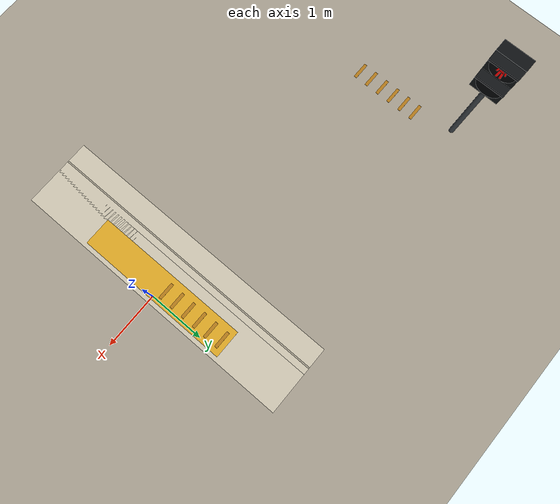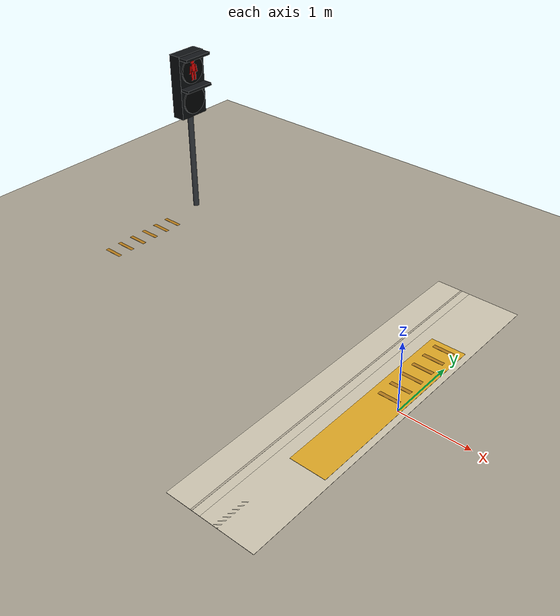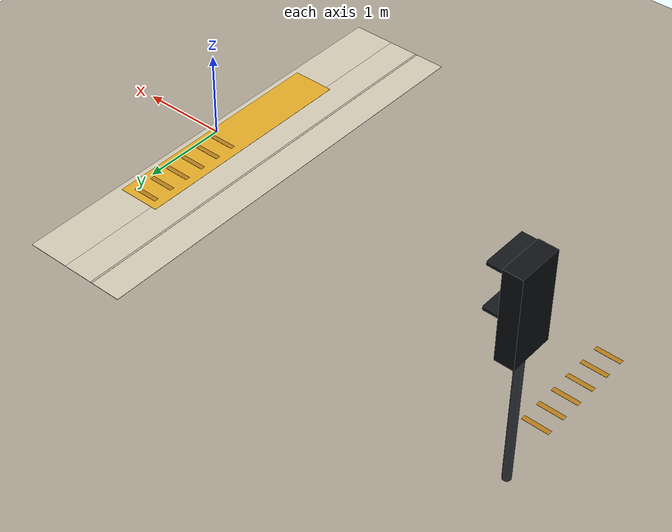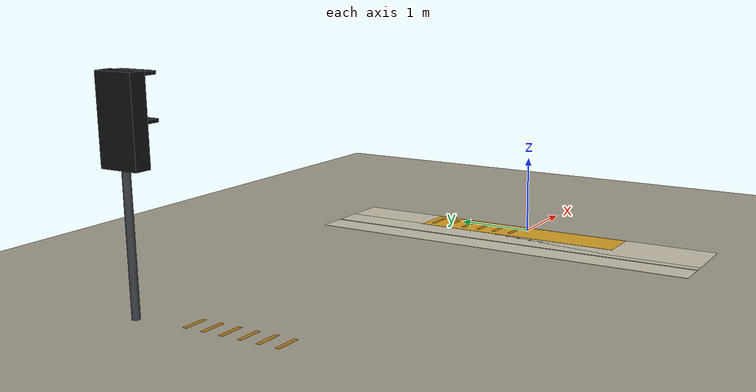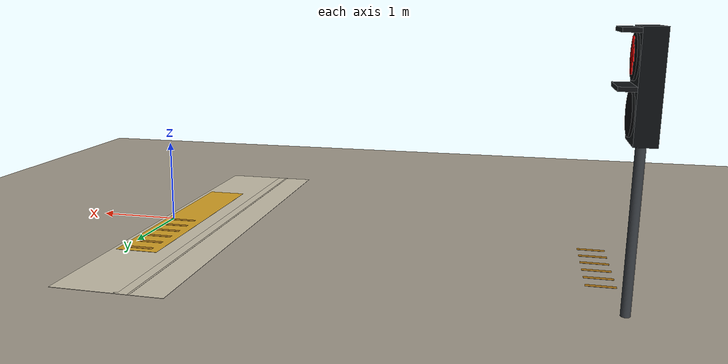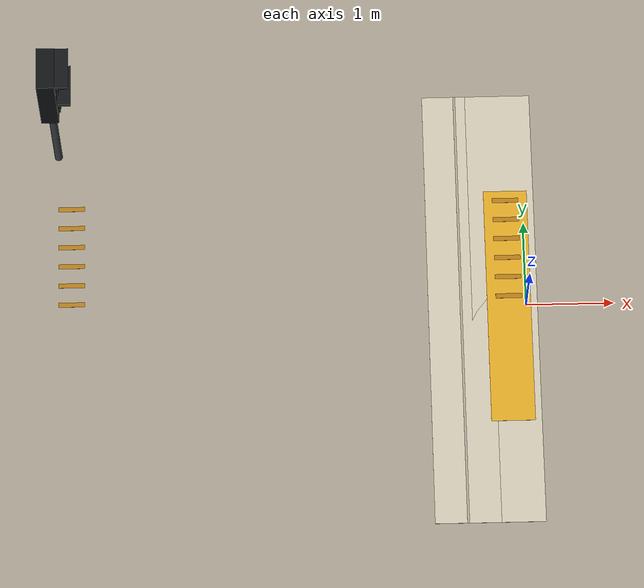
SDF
<sdf version="1.10">
 <world name="swan_market">
  <model name="ground">
   <static>true</static>
   <pose>15 0 -0.1 0 0 0</pose>
   <link name="body">
    <collision name="box_collision"><geometry><box><size>46 24 0.2</size></box></geometry></collision>
    <visual name="box_visual">
     <geometry><box><size>46 24 0.2</size></box></geometry>
     <material><ambient>0.64 0.61 0.55 1</ambient><diffuse>0.64 0.61 0.55 1</diffuse></material>
    </visual>
   </link>
  </model>
  <model name="market_paving_2">
   <static>true</static>
   <pose>-0.75 0 0.002 0 0 0</pose>
   <link name="body">
    <visual name="box_visual">
     <geometry><box><size>0.75 5.2 0.004</size></box></geometry>
     <material><ambient>0.79 0.76 0.68 1</ambient><diffuse>0.79 0.76 0.68 1</diffuse></material>
    </visual>
   </link>
  </model>
  <model name="paving_joint_2">
   <static>true</static>
   <pose>-0.75 0 0.0045 0 0 0</pose>
   <link name="body">
    <visual name="box_visual">
     <geometry><box><size>0.025 5.2 0.001</size></box></geometry>
     <material><ambient>0.67 0.64 0.57 1</ambient><diffuse>0.67 0.64 0.57 1</diffuse></material>
    </visual>
   </link>
  </model>
  <model name="market_paving_3">
   <static>true</static>
   <pose>-0.25 0 0.002 0 0 0</pose>
   <link name="body">
    <visual name="box_visual">
     <geometry><box><size>0.75 5.2 0.004</size></box></geometry>
     <material><ambient>0.79 0.76 0.68 1</ambient><diffuse>0.79 0.76 0.68 1</diffuse></material>
    </visual>
   </link>
  </model>
  <model name="tactile_mark_0_6">
   <static>true</static>
   <pose>-5.2 0.11 0.022 0 0 0</pose>
   <link name="body">
    <visual name="box_visual">
     <geometry><box><size>0.3 0.055 0.002</size></box></geometry>
     <material><ambient>0.69 0.47 0.1 1</ambient><diffuse>0.69 0.47 0.1 1</diffuse></material>
    </visual>
   </link>
  </model>
  <model name="tactile_mark_0_7">
   <static>true</static>
   <pose>-5.2 0.345 0.022 0 0 0</pose>
   <link name="body">
    <visual name="box_visual">
     <geometry><box><size>0.3 0.055 0.002</size></box></geometry>
     <material><ambient>0.69 0.47 0.1 1</ambient><diffuse>0.69 0.47 0.1 1</diffuse></material>
    </visual>
   </link>
  </model>
  <model name="tactile_mark_0_8">
   <static>true</static>
   <pose>-5.2 0.58 0.022 0 0 0</pose>
   <link name="body">
    <visual name="box_visual">
     <geometry><box><size>0.3 0.055 0.002</size></box></geometry>
     <material><ambient>0.69 0.47 0.1 1</ambient><diffuse>0.69 0.47 0.1 1</diffuse></material>
    </visual>
   </link>
  </model>
  <model name="tactile_mark_0_9">
   <static>true</static>
   <pose>-5.2 0.815 0.022 0 0 0</pose>
   <link name="body">
    <visual name="box_visual">
     <geometry><box><size>0.3 0.055 0.002</size></box></geometry>
     <material><ambient>0.69 0.47 0.1 1</ambient><diffuse>0.69 0.47 0.1 1</diffuse></material>
    </visual>
   </link>
  </model>
  <model name="tactile_mark_0_10">
   <static>true</static>
   <pose>-5.2 1.05 0.022 0 0 0</pose>
   <link name="body">
    <visual name="box_visual">
     <geometry><box><size>0.3 0.055 0.002</size></box></geometry>
     <material><ambient>0.69 0.47 0.1 1</ambient><diffuse>0.69 0.47 0.1 1</diffuse></material>
    </visual>
   </link>
  </model>
  <model name="tactile_mark_0_11">
   <static>true</static>
   <pose>-5.2 1.285 0.022 0 0 0</pose>
   <link name="body">
    <visual name="box_visual">
     <geometry><box><size>0.3 0.055 0.002</size></box></geometry>
     <material><ambient>0.69 0.47 0.1 1</ambient><diffuse>0.69 0.47 0.1 1</diffuse></material>
    </visual>
   </link>
  </model>
  <model name="crosswalk_tactile_1">
   <static>true</static>
   <pose>-0.2 0 0.019 0 0 0</pose>
   <link name="body">
    <visual name="box_visual">
     <geometry><box><size>0.5 2.8 0.003</size></box></geometry>
     <material><ambient>0.85 0.64 0.14 1</ambient><diffuse>0.85 0.64 0.14 1</diffuse></material>
    </visual>
   </link>
  </model>
  <model name="tactile_mark_1_6">
   <static>true</static>
   <pose>-0.2 0.11 0.022 0 0 0</pose>
   <link name="body">
    <visual name="box_visual">
     <geometry><box><size>0.3 0.055 0.002</size></box></geometry>
     <material><ambient>0.69 0.47 0.1 1</ambient><diffuse>0.69 0.47 0.1 1</diffuse></material>
    </visual>
   </link>
  </model>
  <model name="tactile_mark_1_7">
   <static>true</static>
   <pose>-0.2 0.345 0.022 0 0 0</pose>
   <link name="body">
    <visual name="box_visual">
     <geometry><box><size>0.3 0.055 0.002</size></box></geometry>
     <material><ambient>0.69 0.47 0.1 1</ambient><diffuse>0.69 0.47 0.1 1</diffuse></material>
    </visual>
   </link>
  </model>
  <model name="tactile_mark_1_8">
   <static>true</static>
   <pose>-0.2 0.58 0.022 0 0 0</pose>
   <link name="body">
    <visual name="box_visual">
     <geometry><box><size>0.3 0.055 0.002</size></box></geometry>
     <material><ambient>0.69 0.47 0.1 1</ambient><diffuse>0.69 0.47 0.1 1</diffuse></material>
    </visual>
   </link>
  </model>
  <model name="tactile_mark_1_9">
   <static>true</static>
   <pose>-0.2 0.815 0.022 0 0 0</pose>
   <link name="body">
    <visual name="box_visual">
     <geometry><box><size>0.3 0.055 0.002</size></box></geometry>
     <material><ambient>0.69 0.47 0.1 1</ambient><diffuse>0.69 0.47 0.1 1</diffuse></material>
    </visual>
   </link>
  </model>
  <model name="tactile_mark_1_10">
   <static>true</static>
   <pose>-0.2 1.05 0.022 0 0 0</pose>
   <link name="body">
    <visual name="box_visual">
     <geometry><box><size>0.3 0.055 0.002</size></box></geometry>
     <material><ambient>0.69 0.47 0.1 1</ambient><diffuse>0.69 0.47 0.1 1</diffuse></material>
    </visual>
   </link>
  </model>
  <model name="tactile_mark_1_11">
   <static>true</static>
   <pose>-0.2 1.285 0.022 0 0 0</pose>
   <link name="body">
    <visual name="box_visual">
     <geometry><box><size>0.3 0.055 0.002</size></box></geometry>
     <material><ambient>0.69 0.47 0.1 1</ambient><diffuse>0.69 0.47 0.1 1</diffuse></material>
    </visual>
   </link>
  </model>
  <model name="ped_signal_west_housing">
   <static>true</static>
   <pose>-5.35 1.95 0 0 0 1.5708</pose>
   <link name="body">
    <collision name="pole_collision">
     <pose>0 0 1.025 0 0 0</pose>
     <geometry><cylinder><radius>0.045</radius><length>2.05</length></cylinder></geometry>
    </collision>
    <visual name="pole_visual">
     <pose>0 0 1.025 0 0 0</pose>
     <geometry><cylinder><radius>0.045</radius><length>2.05</length></cylinder></geometry>
     <material><ambient>0.23 0.25 0.27 1</ambient><diffuse>0.23 0.25 0.27 1</diffuse></material>
    </visual>
    <collision name="housing_collision">
     <pose>0 0 2.08 0 0 0</pose>
     <geometry><box><size>0.48 0.2 0.99</size></box></geometry>
    </collision>
    <visual name="housing_visual">
     <pose>0 0 2.08 0 0 0</pose>
     <geometry><box><size>0.48 0.2 0.99</size></box></geometry>
     <material><ambient>0.055 0.065 0.075 1</ambient><diffuse>0.055 0.065 0.075 1</diffuse></material>
    </visual>
    <visual name="red_lens_visual">
     <pose>0 -0.113 2.32 1.5708 0 0</pose>
     <geometry><cylinder><radius>0.205</radius><length>0.022</length></cylinder></geometry>
     <material><ambient>0.013 0.018 0.022 1</ambient><diffuse>0.013 0.018 0.022 1</diffuse></material>
    </visual>
    <visual name="red_hood_visual">
     <pose>0 -0.13 2.545 0 0 0</pose>
     <geometry><box><size>0.47 0.25 0.04</size></box></geometry>
     <material><ambient>0.07 0.08 0.09 1</ambient><diffuse>0.07 0.08 0.09 1</diffuse></material>
    </visual>
    <visual name="green_lens_visual">
     <pose>0 -0.113 1.84 1.5708 0 0</pose>
     <geometry><cylinder><radius>0.205</radius><length>0.022</length></cylinder></geometry>
     <material><ambient>0.013 0.018 0.022 1</ambient><diffuse>0.013 0.018 0.022 1</diffuse></material>
    </visual>
    <visual name="green_hood_visual">
     <pose>0 -0.13 2.065 0 0 0</pose>
     <geometry><box><size>0.47 0.25 0.04</size></box></geometry>
     <material><ambient>0.07 0.08 0.09 1</ambient><diffuse>0.07 0.08 0.09 1</diffuse></material>
    </visual>
   </link>
  </model>
  <model name="ped_signal_west_red">
   <static>true</static>
   <pose>-5.35 1.95 0 0 0 1.5708</pose>
   <link name="body">
    <visual name="head_visual">
     <pose>-0.012 -0.132 2.457 1.5708 0 0</pose>
     <geometry><cylinder><radius>0.035</radius><length>0.01</length></cylinder></geometry>
     <material>
      <ambient>1 0.025 0.015 1</ambient>
      <diffuse>1 0.025 0.015 1</diffuse>
      <emissive>1 0.025 0.015 1</emissive>
     </material>
     <cast_shadows>false</cast_shadows>
    </visual>
    <visual name="stroke_0_visual">
     <pose>0 -0.132 2.36 0 3.1416 0</pose>
     <geometry><box><size>0.064 0.01 0.122</size></box></geometry>
     <material>
      <ambient>1 0.025 0.015 1</ambient>
      <diffuse>1 0.025 0.015 1</diffuse>
      <emissive>1 0.025 0.015 1</emissive>
     </material>
     <cast_shadows>false</cast_shadows>
    </visual>
    <visual name="stroke_1_visual">
     <pose>-0.056 -0.132 2.338 0 -2.9551 0</pose>
     <geometry><box><size>0.026 0.01 0.11987</size></box></geometry>
     <material>
      <ambient>1 0.025 0.015 1</ambient>
      <diffuse>1 0.025 0.015 1</diffuse>
      <emissive>1 0.025 0.015 1</emissive>
     </material>
     <cast_shadows>false</cast_shadows>
    </visual>
    <visual name="stroke_2_visual">
     <pose>0.056 -0.132 2.338 0 2.9551 0</pose>
     <geometry><box><size>0.026 0.01 0.11987</size></box></geometry>
     <material>
      <ambient>1 0.025 0.015 1</ambient>
      <diffuse>1 0.025 0.015 1</diffuse>
      <emissive>1 0.025 0.015 1</emissive>
     </material>
     <cast_shadows>false</cast_shadows>
    </visual>
    <visual name="stroke_3_visual">
     <pose>-0.0255 -0.132 2.2425 0 -3.075 0</pose>
     <geometry><box><size>0.032 0.01 0.1473</size></box></geometry>
     <material>
      <ambient>1 0.025 0.015 1</ambient>
      <diffuse>1 0.025 0.015 1</diffuse>
      <emissive>1 0.025 0.015 1</emissive>
     </material>
     <cast_shadows>false</cast_shadows>
    </visual>
    <visual name="stroke_4_visual">
     <pose>0.0255 -0.132 2.2425 0 3.075 0</pose>
     <geometry><box><size>0.032 0.01 0.1473</size></box></geometry>
     <material>
      <ambient>1 0.025 0.015 1</ambient>
      <diffuse>1 0.025 0.015 1</diffuse>
      <emissive>1 0.025 0.015 1</emissive>
     </material>
     <cast_shadows>false</cast_shadows>
    </visual>
   </link>
  </model>
 </world>
</sdf>
